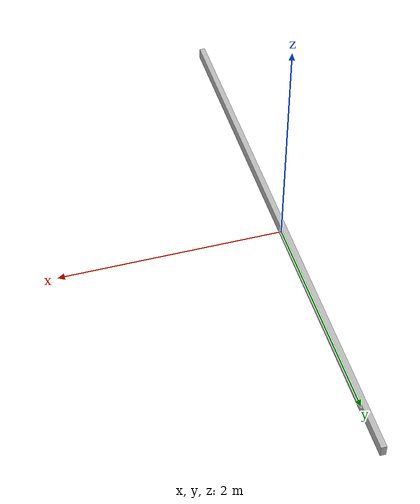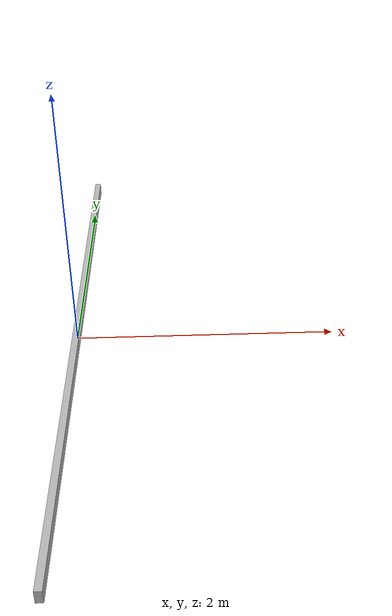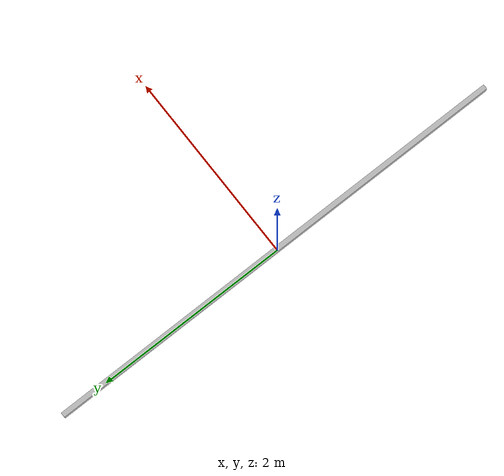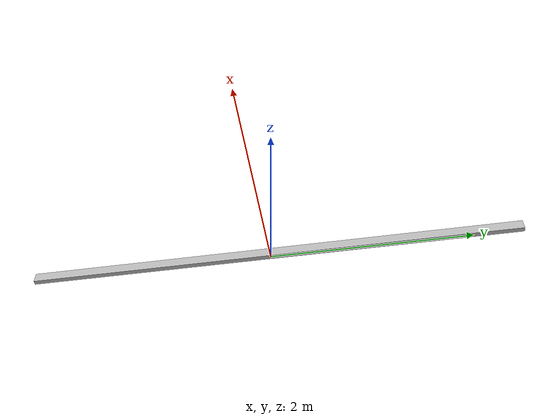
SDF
<?xml version="1.0" ?>
<sdf version="1.6">
  <model name="rpo2023/outside_blocks">
    <static>true</static>
    <link name="1_link">
      <collision name="1_col">
        <geometry>
          <box>
            <size>0.1 4.97 0.1</size>
          </box>
        </geometry>
      </collision>
      <visual name="1_vis">
        <geometry>
          <box>
            <size>0.05 4.97 0.1</size>
          </box>
        </geometry>
      </visual>
      <pose>0.0 0.0 0.05 0 0 0</pose>
    </link>
  </model>
</sdf>
